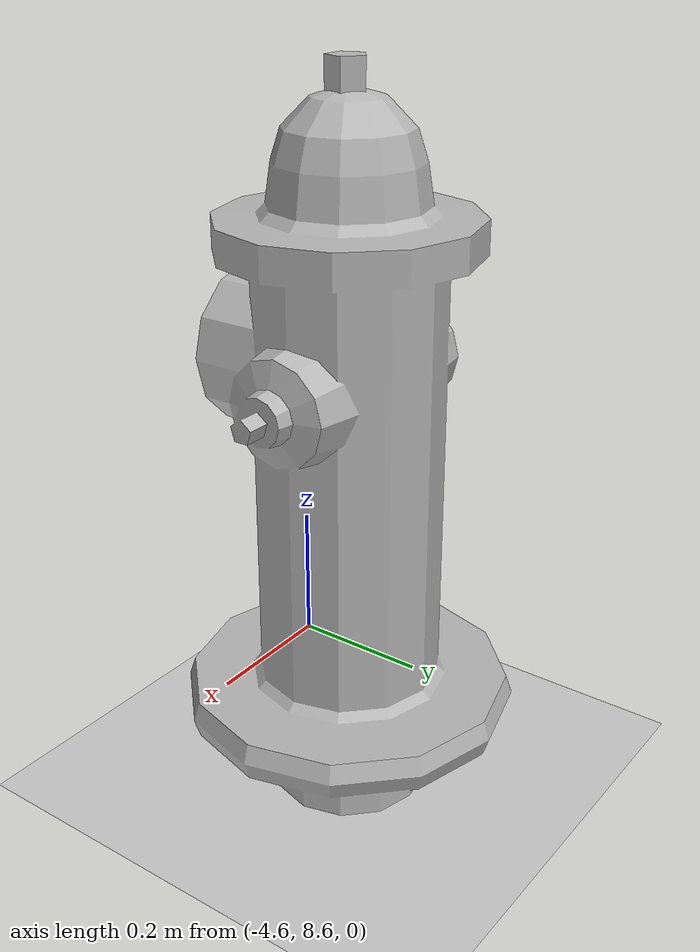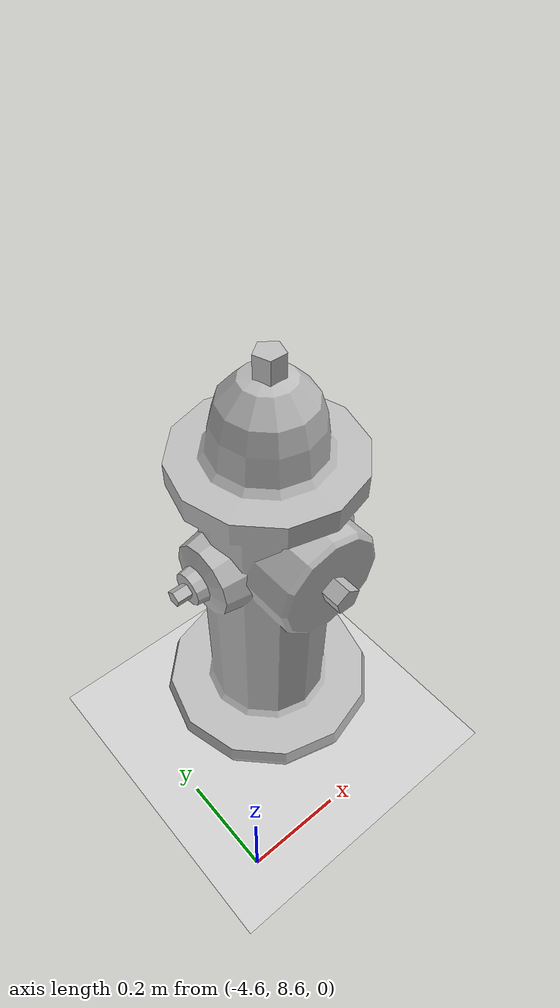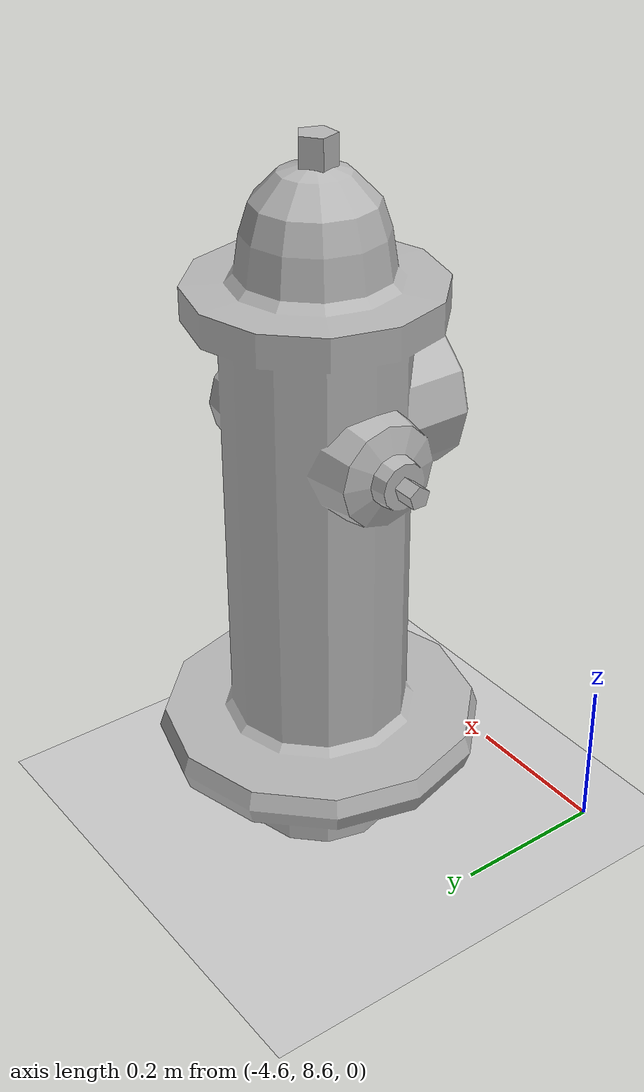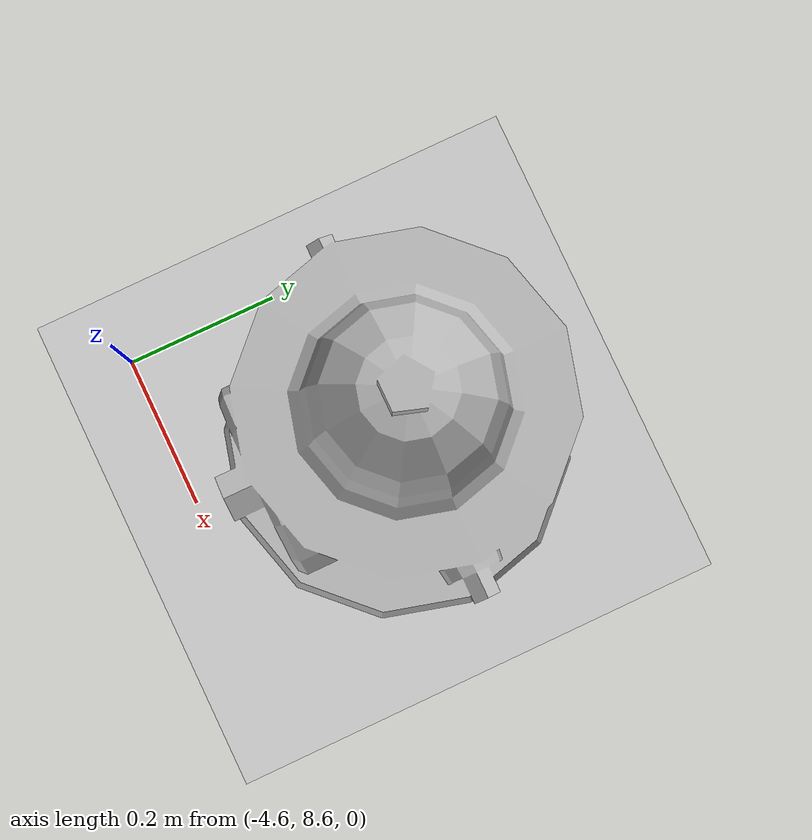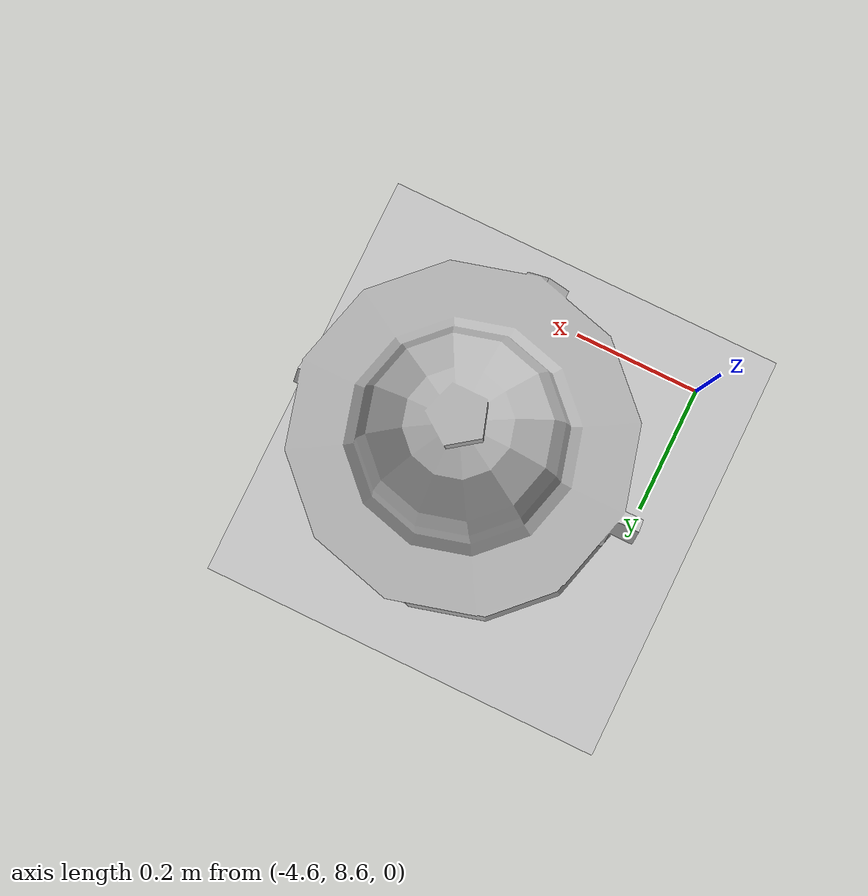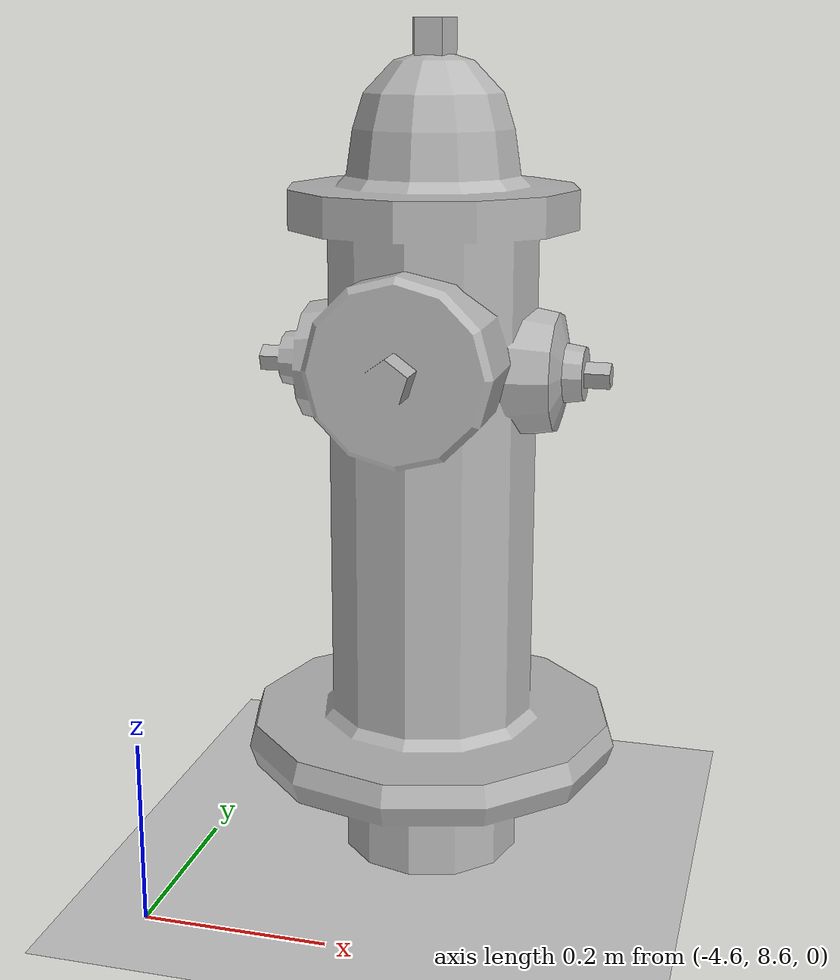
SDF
<sdf version="1.7">
 <world name="default">
  <model name="ground_plane">
   <static>1</static>
   <link name="link">
    <collision name="collision">
     <geometry><plane><normal>0 0 1</normal><size>100 100</size></plane></geometry>
     <surface><friction><ode><mu>100</mu><mu2>50</mu2></ode></friction></surface>
    </collision>
    <visual name="visual">
     <cast_shadows>0</cast_shadows>
     <geometry><plane><normal>0 0 1</normal><size>100 100</size></plane></geometry>
     <material>
      <script><uri>file://media/materials/scripts/gazebo.material</uri><name>Gazebo/Grey</name></script>
     </material>
    </visual>
   </link>
  </model>
  <model name="fire_hydrant">
   <static>1</static>
   <link name="link">
    <collision name="collision">
     <geometry><mesh><uri>model://fire_hydrant/meshes/fire_hydrant.dae</uri></mesh></geometry>
    </collision>
    <visual name="visual">
     <geometry><mesh><uri>model://fire_hydrant/meshes/fire_hydrant.dae</uri></mesh></geometry>
    </visual>
   </link>
   <pose>-4.35255 8.86049 0 0 -0 0</pose>
  </model>
 </world>
</sdf>
